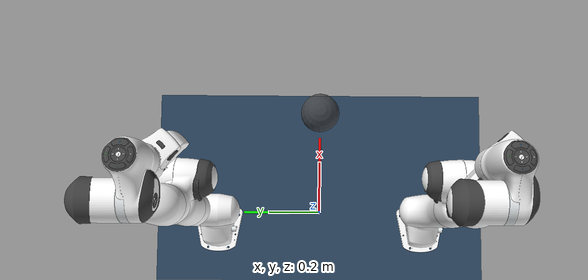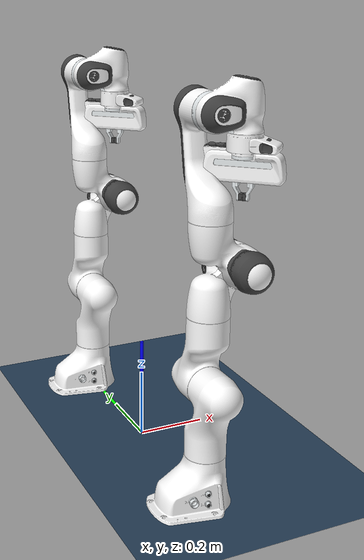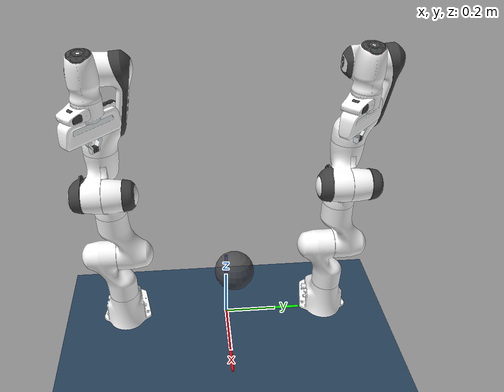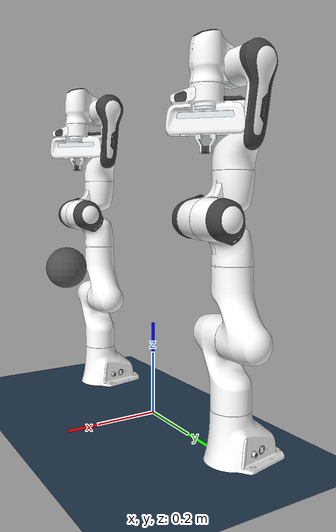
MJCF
<?xml version='1.0' encoding='utf-8'?>
<mujoco model="panda dual arm scene">
  <include file="panda_dual_arm_pos.xml" />

  <statistic center="0.3 0 0.4" extent="1.5" />

  <visual>
    <headlight diffuse="0.6 0.6 0.6" ambient="0.3 0.3 0.3" specular="0 0 0" />
    <rgba haze="0.15 0.25 0.35 1" />
    <global azimuth="120" elevation="-20" />
  </visual>

  <asset>
    <texture type="skybox" builtin="gradient" rgb1="0.3 0.5 0.7" rgb2="0 0 0" width="512" height="3072" />
    <texture type="2d" name="groundplane" builtin="checker" mark="edge" rgb1="0.2 0.3 0.4" rgb2="0.1 0.2 0.3" markrgb="0.8 0.8 0.8" width="300" height="300" />
    <material name="groundplane" texture="groundplane" texuniform="true" texrepeat="5 5" reflectance="0.2" />
  </asset>

  <worldbody>
    <light pos="0 0 1.5" dir="0 0 -1" directional="true" />
    <geom name="floor" size="0 0 0.05" type="plane" material="groundplane" />
    <body name="world_frame" pos="0 0 0">
      <geom name="X" type="cylinder" size="0.005" fromto="0 0 0 0.3 0 0" rgba="1 0 0 1" contype="0" conaffinity="0" />
      <geom name="Y" type="cylinder" size="0.005" fromto="0 0 0 0 0.3 0" rgba="0 1 0 1" contype="0" conaffinity="0" />
      <geom name="Z" type="cylinder" size="0.005" fromto="0 0 0 0 0 0.3" rgba="0 0 1 1" contype="0" conaffinity="0" />
    </body>

    <body name="obstacle_0">
      <geom name="obstacle_0"
        type="sphere"
        size="0.060"
        pos="0.300 0.000 0.500"
        contype="1"
        conaffinity="1"
        mass="0.2"
        rgba="0.300 0.300 0.300 0.800"
      />
    </body>
  </worldbody>
</mujoco>

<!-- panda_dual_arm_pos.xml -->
<mujoco model="panda dual arm">
  <compiler angle="radian" meshdir="assets" autolimits="true"/>

  <option integrator="implicitfast"/>

  <default>
    <default class="panda">
      <material specular="0.5" shininess="0.25"/>
      <joint armature="0.1" damping="1" axis="0 0 1" range="-2.8973 2.8973"/>
      <general dyntype="none" biastype="affine" ctrlrange="-2.8973 2.8973" forcerange="-87 87"/>
      <default class="finger">
        <joint axis="0 1 0" type="slide" range="0 0.04"/>
      </default>
      <default class="visual">
        <geom type="mesh" contype="0" conaffinity="0" group="2"/>
      </default>
      <default class="collision">
        <geom type="mesh" group="3"/>
        <default class="fingertip_pad_collision_1">
          <geom type="box" size="0.0085 0.004 0.0085" pos="0 0.0055 0.0445"/>
        </default>
        <default class="fingertip_pad_collision_2">
          <geom type="box" size="0.003 0.002 0.003" pos="0.0055 0.002 0.05"/>
        </default>
        <default class="fingertip_pad_collision_3">
          <geom type="box" size="0.003 0.002 0.003" pos="-0.0055 0.002 0.05"/>
        </default>
        <default class="fingertip_pad_collision_4">
          <geom type="box" size="0.003 0.002 0.0035" pos="0.0055 0.002 0.0395"/>
        </default>
        <default class="fingertip_pad_collision_5">
          <geom type="box" size="0.003 0.002 0.0035" pos="-0.0055 0.002 0.0395"/>
        </default>
      </default>
    </default>
  </default>

  <asset>
    <material class="panda" name="white" rgba="1 1 1 1"/>
    <material class="panda" name="off_white" rgba="0.901961 0.921569 0.929412 1"/>
    <material class="panda" name="black" rgba="0.25 0.25 0.25 1"/>
    <material class="panda" name="green" rgba="0 1 0 1"/>
    <material class="panda" name="light_blue" rgba="0.039216 0.541176 0.780392 1"/>

    <mesh name="link0_c" file="link0.stl"/>
    <mesh name="link1_c" file="link1.stl"/>
    <mesh name="link2_c" file="link2.stl"/>
    <mesh name="link3_c" file="link3.stl"/>
    <mesh name="link4_c" file="link4.stl"/>
    <mesh name="link5_c0" file="link5_collision_0.obj"/>
    <mesh name="link5_c1" file="link5_collision_1.obj"/>
    <mesh name="link5_c2" file="link5_collision_2.obj"/>
    <mesh name="link6_c" file="link6.stl"/>
    <mesh name="link7_c" file="link7.stl"/>
    <mesh name="hand_c" file="hand.stl"/>

    <mesh file="link0_0.obj"/>
    <mesh file="link0_1.obj"/>
    <mesh file="link0_2.obj"/>
    <mesh file="link0_3.obj"/>
    <mesh file="link0_4.obj"/>
    <mesh file="link0_5.obj"/>
    <mesh file="link0_7.obj"/>
    <mesh file="link0_8.obj"/>
    <mesh file="link0_9.obj"/>
    <mesh file="link0_10.obj"/>
    <mesh file="link0_11.obj"/>
    <mesh file="link1.obj"/>
    <mesh file="link2.obj"/>
    <mesh file="link3_0.obj"/>
    <mesh file="link3_1.obj"/>
    <mesh file="link3_2.obj"/>
    <mesh file="link3_3.obj"/>
    <mesh file="link4_0.obj"/>
    <mesh file="link4_1.obj"/>
    <mesh file="link4_2.obj"/>
    <mesh file="link4_3.obj"/>
    <mesh file="link5_0.obj"/>
    <mesh file="link5_1.obj"/>
    <mesh file="link5_2.obj"/>
    <mesh file="link6_0.obj"/>
    <mesh file="link6_1.obj"/>
    <mesh file="link6_2.obj"/>
    <mesh file="link6_3.obj"/>
    <mesh file="link6_4.obj"/>
    <mesh file="link6_5.obj"/>
    <mesh file="link6_6.obj"/>
    <mesh file="link6_7.obj"/>
    <mesh file="link6_8.obj"/>
    <mesh file="link6_9.obj"/>
    <mesh file="link6_10.obj"/>
    <mesh file="link6_11.obj"/>
    <mesh file="link6_12.obj"/>
    <mesh file="link6_13.obj"/>
    <mesh file="link6_14.obj"/>
    <mesh file="link6_15.obj"/>
    <mesh file="link6_16.obj"/>
    <mesh file="link7_0.obj"/>
    <mesh file="link7_1.obj"/>
    <mesh file="link7_2.obj"/>
    <mesh file="link7_3.obj"/>
    <mesh file="link7_4.obj"/>
    <mesh file="link7_5.obj"/>
    <mesh file="link7_6.obj"/>
    <mesh file="link7_7.obj"/>
    <mesh file="hand_0.obj"/>
    <mesh file="hand_1.obj"/>
    <mesh file="hand_2.obj"/>
    <mesh file="hand_3.obj"/>
    <mesh file="hand_4.obj"/>
    <mesh file="finger_0.obj"/>
    <mesh file="finger_1.obj"/>
  </asset>

  <worldbody>
    <light name="top" pos="0 0 2" mode="trackcom"/>

    <!-- ========== LEFT ARM ========== -->
    <body name="left_link0" pos="0 0.4 0" childclass="panda">
      <inertial mass="0.629769" pos="-0.041018 -0.00014 0.049974"
        fullinertia="0.00315 0.00388 0.004285 8.2904e-7 0.00015 8.2299e-6"/>
      <geom mesh="link0_0" material="off_white" class="visual"/>
      <geom mesh="link0_1" material="black" class="visual"/>
      <geom mesh="link0_2" material="off_white" class="visual"/>
      <geom mesh="link0_3" material="black" class="visual"/>
      <geom mesh="link0_4" material="off_white" class="visual"/>
      <geom mesh="link0_5" material="black" class="visual"/>
      <geom mesh="link0_7" material="white" class="visual"/>
      <geom mesh="link0_8" material="white" class="visual"/>
      <geom mesh="link0_9" material="black" class="visual"/>
      <geom mesh="link0_10" material="off_white" class="visual"/>
      <geom mesh="link0_11" material="white" class="visual"/>
      <geom mesh="link0_c" class="collision"/>
      <body name="left_link1" pos="0 0 0.333">
        <inertial mass="4.970684" pos="0.003875 0.002081 -0.04762"
          fullinertia="0.70337 0.70661 0.0091170 -0.00013900 0.0067720 0.019169"/>
        <joint name="left_joint1"/>
        <geom material="white" mesh="link1" class="visual"/>
        <geom mesh="link1_c" class="collision"/>
        <body name="left_link2" quat="1 -1 0 0">
          <inertial mass="0.646926" pos="-0.003141 -0.02872 0.003495"
            fullinertia="0.0079620 2.8110e-2 2.5995e-2 -3.925e-3 1.0254e-2 7.04e-4"/>
          <joint name="left_joint2" range="-1.7628 1.7628"/>
          <geom material="white" mesh="link2" class="visual"/>
          <geom mesh="link2_c" class="collision"/>
          <body name="left_link3" pos="0 -0.316 0" quat="1 1 0 0">
            <joint name="left_joint3"/>
            <inertial mass="3.228604" pos="2.7518e-2 3.9252e-2 -6.6502e-2"
              fullinertia="3.7242e-2 3.6155e-2 1.083e-2 -4.761e-3 -1.1396e-2 -1.2805e-2"/>
            <geom mesh="link3_0" material="white" class="visual"/>
            <geom mesh="link3_1" material="white" class="visual"/>
            <geom mesh="link3_2" material="white" class="visual"/>
            <geom mesh="link3_3" material="black" class="visual"/>
            <geom mesh="link3_c" class="collision"/>
            <body name="left_link4" pos="0.0825 0 0" quat="1 1 0 0">
              <inertial mass="3.587895" pos="-5.317e-2 1.04419e-1 2.7454e-2"
                fullinertia="2.5853e-2 1.9552e-2 2.8323e-2 7.796e-3 -1.332e-3 8.641e-3"/>
              <joint name="left_joint4" range="-3.0718 -0.0698"/>
              <geom mesh="link4_0" material="white" class="visual"/>
              <geom mesh="link4_1" material="white" class="visual"/>
              <geom mesh="link4_2" material="black" class="visual"/>
              <geom mesh="link4_3" material="white" class="visual"/>
              <geom mesh="link4_c" class="collision"/>
              <body name="left_link5" pos="-0.0825 0.384 0" quat="1 -1 0 0">
                <inertial mass="1.225946" pos="-1.1953e-2 4.1065e-2 -3.8437e-2"
                  fullinertia="3.5549e-2 2.9474e-2 8.627e-3 -2.117e-3 -4.037e-3 2.29e-4"/>
                <joint name="left_joint5"/>
                <geom mesh="link5_0" material="black" class="visual"/>
                <geom mesh="link5_1" material="white" class="visual"/>
                <geom mesh="link5_2" material="white" class="visual"/>
                <geom mesh="link5_c0" class="collision"/>
                <geom mesh="link5_c1" class="collision"/>
                <geom mesh="link5_c2" class="collision"/>
                <body name="left_link6" quat="1 1 0 0">
                  <inertial mass="1.666555" pos="6.0149e-2 -1.4117e-2 -1.0517e-2"
                    fullinertia="1.964e-3 4.354e-3 5.433e-3 1.09e-4 -1.158e-3 3.41e-4"/>
                  <joint name="left_joint6" range="-0.0175 3.7525"/>
                  <geom mesh="link6_0" material="off_white" class="visual"/>
                  <geom mesh="link6_1" material="white" class="visual"/>
                  <geom mesh="link6_2" material="black" class="visual"/>
                  <geom mesh="link6_3" material="white" class="visual"/>
                  <geom mesh="link6_4" material="white" class="visual"/>
                  <geom mesh="link6_5" material="white" class="visual"/>
                  <geom mesh="link6_6" material="white" class="visual"/>
                  <geom mesh="link6_7" material="light_blue" class="visual"/>
                  <geom mesh="link6_8" material="light_blue" class="visual"/>
                  <geom mesh="link6_9" material="black" class="visual"/>
                  <geom mesh="link6_10" material="black" class="visual"/>
                  <geom mesh="link6_11" material="white" class="visual"/>
                  <geom mesh="link6_12" material="green" class="visual"/>
                  <geom mesh="link6_13" material="white" class="visual"/>
                  <geom mesh="link6_14" material="black" class="visual"/>
                  <geom mesh="link6_15" material="black" class="visual"/>
                  <geom mesh="link6_16" material="white" class="visual"/>
                  <geom mesh="link6_c" class="collision"/>
                  <body name="left_link7" pos="0.088 0 0" quat="1 1 0 0">
                    <inertial mass="7.35522e-01" pos="1.0517e-2 -4.252e-3 6.1597e-2"
                      fullinertia="1.2516e-2 1.0027e-2 4.815e-3 -4.28e-4 -1.196e-3 -7.41e-4"/>
                    <joint name="left_joint7"/>
                    <geom mesh="link7_0" material="white" class="visual"/>
                    <geom mesh="link7_1" material="black" class="visual"/>
                    <geom mesh="link7_2" material="black" class="visual"/>
                    <geom mesh="link7_3" material="black" class="visual"/>
                    <geom mesh="link7_4" material="black" class="visual"/>
                    <geom mesh="link7_5" material="black" class="visual"/>
                    <geom mesh="link7_6" material="black" class="visual"/>
                    <geom mesh="link7_7" material="white" class="visual"/>
                    <geom mesh="link7_c" class="collision"/>
                    <body name="left_hand" pos="0 0 0.107" quat="0.9238795 0 0 -0.3826834">
                      <inertial mass="0.73" pos="-0.01 0 0.03" diaginertia="0.001 0.0025 0.0017"/>
                      <geom mesh="hand_0" material="off_white" class="visual"/>
                      <geom mesh="hand_1" material="black" class="visual"/>
                      <geom mesh="hand_2" material="black" class="visual"/>
                      <geom mesh="hand_3" material="white" class="visual"/>
                      <geom mesh="hand_4" material="off_white" class="visual"/>
                      <geom mesh="hand_c" class="collision"/>
                      <body name="left_ee_center_body" pos="0 0 0.105" quat="1 0 0 0">
                        <site name="left_ee_center_site" size="0.01" group="3"/>
                      </body>
                      <body name="left_left_finger" pos="0 0 0.0584">
                        <inertial mass="0.015" pos="0 0 0" diaginertia="2.375e-6 2.375e-6 7.5e-7"/>
                        <joint name="left_finger_joint1" class="finger"/>
                        <geom mesh="finger_0" material="off_white" class="visual"/>
                        <geom mesh="finger_1" material="black" class="visual"/>
                        <geom mesh="finger_0" class="collision"/>
                        <geom class="fingertip_pad_collision_1"/>
                        <geom class="fingertip_pad_collision_2"/>
                        <geom class="fingertip_pad_collision_3"/>
                        <geom class="fingertip_pad_collision_4"/>
                        <geom class="fingertip_pad_collision_5"/>
                      </body>
                      <body name="left_right_finger" pos="0 0 0.0584" quat="0 0 0 1">
                        <inertial mass="0.015" pos="0 0 0" diaginertia="2.375e-6 2.375e-6 7.5e-7"/>
                        <joint name="left_finger_joint2" class="finger"/>
                        <geom mesh="finger_0" material="off_white" class="visual"/>
                        <geom mesh="finger_1" material="black" class="visual"/>
                        <geom mesh="finger_0" class="collision"/>
                        <geom class="fingertip_pad_collision_1"/>
                        <geom class="fingertip_pad_collision_2"/>
                        <geom class="fingertip_pad_collision_3"/>
                        <geom class="fingertip_pad_collision_4"/>
                        <geom class="fingertip_pad_collision_5"/>
                      </body>
                    </body>
                  </body>
                </body>
              </body>
            </body>
          </body>
        </body>
      </body>
    </body>

    <!-- ========== RIGHT ARM ========== -->
    <body name="right_link0" pos="0 -0.4 0" childclass="panda">
      <inertial mass="0.629769" pos="-0.041018 -0.00014 0.049974"
        fullinertia="0.00315 0.00388 0.004285 8.2904e-7 0.00015 8.2299e-6"/>
      <geom mesh="link0_0" material="off_white" class="visual"/>
      <geom mesh="link0_1" material="black" class="visual"/>
      <geom mesh="link0_2" material="off_white" class="visual"/>
      <geom mesh="link0_3" material="black" class="visual"/>
      <geom mesh="link0_4" material="off_white" class="visual"/>
      <geom mesh="link0_5" material="black" class="visual"/>
      <geom mesh="link0_7" material="white" class="visual"/>
      <geom mesh="link0_8" material="white" class="visual"/>
      <geom mesh="link0_9" material="black" class="visual"/>
      <geom mesh="link0_10" material="off_white" class="visual"/>
      <geom mesh="link0_11" material="white" class="visual"/>
      <geom mesh="link0_c" class="collision"/>
      <body name="right_link1" pos="0 0 0.333">
        <inertial mass="4.970684" pos="0.003875 0.002081 -0.04762"
          fullinertia="0.70337 0.70661 0.0091170 -0.00013900 0.0067720 0.019169"/>
        <joint name="right_joint1"/>
        <geom material="white" mesh="link1" class="visual"/>
        <geom mesh="link1_c" class="collision"/>
        <body name="right_link2" quat="1 -1 0 0">
          <inertial mass="0.646926" pos="-0.003141 -0.02872 0.003495"
            fullinertia="0.0079620 2.8110e-2 2.5995e-2 -3.925e-3 1.0254e-2 7.04e-4"/>
          <joint name="right_joint2" range="-1.7628 1.7628"/>
          <geom material="white" mesh="link2" class="visual"/>
          <geom mesh="link2_c" class="collision"/>
          <body name="right_link3" pos="0 -0.316 0" quat="1 1 0 0">
            <joint name="right_joint3"/>
            <inertial mass="3.228604" pos="2.7518e-2 3.9252e-2 -6.6502e-2"
              fullinertia="3.7242e-2 3.6155e-2 1.083e-2 -4.761e-3 -1.1396e-2 -1.2805e-2"/>
            <geom mesh="link3_0" material="white" class="visual"/>
            <geom mesh="link3_1" material="white" class="visual"/>
            <geom mesh="link3_2" material="white" class="visual"/>
            <geom mesh="link3_3" material="black" class="visual"/>
            <geom mesh="link3_c" class="collision"/>
            <body name="right_link4" pos="0.0825 0 0" quat="1 1 0 0">
              <inertial mass="3.587895" pos="-5.317e-2 1.04419e-1 2.7454e-2"
                fullinertia="2.5853e-2 1.9552e-2 2.8323e-2 7.796e-3 -1.332e-3 8.641e-3"/>
              <joint name="right_joint4" range="-3.0718 -0.0698"/>
              <geom mesh="link4_0" material="white" class="visual"/>
              <geom mesh="link4_1" material="white" class="visual"/>
              <geom mesh="link4_2" material="black" class="visual"/>
              <geom mesh="link4_3" material="white" class="visual"/>
              <geom mesh="link4_c" class="collision"/>
              <body name="right_link5" pos="-0.0825 0.384 0" quat="1 -1 0 0">
                <inertial mass="1.225946" pos="-1.1953e-2 4.1065e-2 -3.8437e-2"
                  fullinertia="3.5549e-2 2.9474e-2 8.627e-3 -2.117e-3 -4.037e-3 2.29e-4"/>
                <joint name="right_joint5"/>
                <geom mesh="link5_0" material="black" class="visual"/>
                <geom mesh="link5_1" material="white" class="visual"/>
                <geom mesh="link5_2" material="white" class="visual"/>
                <geom mesh="link5_c0" class="collision"/>
                <geom mesh="link5_c1" class="collision"/>
                <geom mesh="link5_c2" class="collision"/>
                <body name="right_link6" quat="1 1 0 0">
                  <inertial mass="1.666555" pos="6.0149e-2 -1.4117e-2 -1.0517e-2"
                    fullinertia="1.964e-3 4.354e-3 5.433e-3 1.09e-4 -1.158e-3 3.41e-4"/>
                  <joint name="right_joint6" range="-0.0175 3.7525"/>
                  <geom mesh="link6_0" material="off_white" class="visual"/>
                  <geom mesh="link6_1" material="white" class="visual"/>
                  <geom mesh="link6_2" material="black" class="visual"/>
                  <geom mesh="link6_3" material="white" class="visual"/>
                  <geom mesh="link6_4" material="white" class="visual"/>
                  <geom mesh="link6_5" material="white" class="visual"/>
                  <geom mesh="link6_6" material="white" class="visual"/>
                  <geom mesh="link6_7" material="light_blue" class="visual"/>
                  <geom mesh="link6_8" material="light_blue" class="visual"/>
                  <geom mesh="link6_9" material="black" class="visual"/>
                  <geom mesh="link6_10" material="black" class="visual"/>
                  <geom mesh="link6_11" material="white" class="visual"/>
                  <geom mesh="link6_12" material="green" class="visual"/>
                  <geom mesh="link6_13" material="white" class="visual"/>
                  <geom mesh="link6_14" material="black" class="visual"/>
                  <geom mesh="link6_15" material="black" class="visual"/>
                  <geom mesh="link6_16" material="white" class="visual"/>
                  <geom mesh="link6_c" class="collision"/>
                  <body name="right_link7" pos="0.088 0 0" quat="1 1 0 0">
                    <inertial mass="7.35522e-01" pos="1.0517e-2 -4.252e-3 6.1597e-2"
                      fullinertia="1.2516e-2 1.0027e-2 4.815e-3 -4.28e-4 -1.196e-3 -7.41e-4"/>
                    <joint name="right_joint7"/>
                    <geom mesh="link7_0" material="white" class="visual"/>
                    <geom mesh="link7_1" material="black" class="visual"/>
                    <geom mesh="link7_2" material="black" class="visual"/>
                    <geom mesh="link7_3" material="black" class="visual"/>
                    <geom mesh="link7_4" material="black" class="visual"/>
                    <geom mesh="link7_5" material="black" class="visual"/>
                    <geom mesh="link7_6" material="black" class="visual"/>
                    <geom mesh="link7_7" material="white" class="visual"/>
                    <geom mesh="link7_c" class="collision"/>
                    <body name="right_hand" pos="0 0 0.107" quat="0.9238795 0 0 -0.3826834">
                      <inertial mass="0.73" pos="-0.01 0 0.03" diaginertia="0.001 0.0025 0.0017"/>
                      <geom mesh="hand_0" material="off_white" class="visual"/>
                      <geom mesh="hand_1" material="black" class="visual"/>
                      <geom mesh="hand_2" material="black" class="visual"/>
                      <geom mesh="hand_3" material="white" class="visual"/>
                      <geom mesh="hand_4" material="off_white" class="visual"/>
                      <geom mesh="hand_c" class="collision"/>
                      <body name="right_ee_center_body" pos="0 0 0.105" quat="1 0 0 0">
                        <site name="right_ee_center_site" size="0.01" group="3"/>
                      </body>
                      <body name="right_left_finger" pos="0 0 0.0584">
                        <inertial mass="0.015" pos="0 0 0" diaginertia="2.375e-6 2.375e-6 7.5e-7"/>
                        <joint name="right_finger_joint1" class="finger"/>
                        <geom mesh="finger_0" material="off_white" class="visual"/>
                        <geom mesh="finger_1" material="black" class="visual"/>
                        <geom mesh="finger_0" class="collision"/>
                        <geom class="fingertip_pad_collision_1"/>
                        <geom class="fingertip_pad_collision_2"/>
                        <geom class="fingertip_pad_collision_3"/>
                        <geom class="fingertip_pad_collision_4"/>
                        <geom class="fingertip_pad_collision_5"/>
                      </body>
                      <body name="right_right_finger" pos="0 0 0.0584" quat="0 0 0 1">
                        <inertial mass="0.015" pos="0 0 0" diaginertia="2.375e-6 2.375e-6 7.5e-7"/>
                        <joint name="right_finger_joint2" class="finger"/>
                        <geom mesh="finger_0" material="off_white" class="visual"/>
                        <geom mesh="finger_1" material="black" class="visual"/>
                        <geom mesh="finger_0" class="collision"/>
                        <geom class="fingertip_pad_collision_1"/>
                        <geom class="fingertip_pad_collision_2"/>
                        <geom class="fingertip_pad_collision_3"/>
                        <geom class="fingertip_pad_collision_4"/>
                        <geom class="fingertip_pad_collision_5"/>
                      </body>
                    </body>
                  </body>
                </body>
              </body>
            </body>
          </body>
        </body>
      </body>
    </body>
  </worldbody>

  <tendon>
    <fixed name="left_split">
      <joint joint="left_finger_joint1" coef="0.5"/>
      <joint joint="left_finger_joint2" coef="0.5"/>
    </fixed>
    <fixed name="right_split">
      <joint joint="right_finger_joint1" coef="0.5"/>
      <joint joint="right_finger_joint2" coef="0.5"/>
    </fixed>
  </tendon>

  <equality>
    <joint joint1="left_finger_joint1" joint2="left_finger_joint2" solimp="0.95 0.99 0.001" solref="0.005 1"/>
    <joint joint1="right_finger_joint1" joint2="right_finger_joint2" solimp="0.95 0.99 0.001" solref="0.005 1"/>
  </equality>

  <actuator>
    <position name="left_joint1_pos" joint="left_joint1" kp="800" kv="80" ctrlrange="-6.28 6.28" gear="1.0"/>
    <position name="left_joint2_pos" joint="left_joint2" kp="800" kv="80" ctrlrange="-6.28 6.28" gear="1.0"/>
    <position name="left_joint3_pos" joint="left_joint3" kp="800" kv="80" ctrlrange="-6.28 6.28" gear="1.0"/>
    <position name="left_joint4_pos" joint="left_joint4" kp="800" kv="80" ctrlrange="-6.28 6.28" gear="1.0"/>
    <position name="left_joint5_pos" joint="left_joint5" kp="800" kv="80" ctrlrange="-6.28 6.28" gear="1.0"/>
    <position name="left_joint6_pos" joint="left_joint6" kp="800" kv="80" ctrlrange="-6.28 6.28" gear="1.0"/>
    <position name="left_joint7_pos" joint="left_joint7" kp="800" kv="80" ctrlrange="-6.28 6.28" gear="1.0"/>
    <general class="panda" name="left_actuator8" tendon="left_split"
             forcerange="-100 100" ctrlrange="0 255"
             gainprm="0.01568627451 0" biasprm="0 -100 -10"/>

    <position name="right_joint1_pos" joint="right_joint1" kp="800" kv="80" ctrlrange="-6.28 6.28" gear="1.0"/>
    <position name="right_joint2_pos" joint="right_joint2" kp="800" kv="80" ctrlrange="-6.28 6.28" gear="1.0"/>
    <position name="right_joint3_pos" joint="right_joint3" kp="800" kv="80" ctrlrange="-6.28 6.28" gear="1.0"/>
    <position name="right_joint4_pos" joint="right_joint4" kp="800" kv="80" ctrlrange="-6.28 6.28" gear="1.0"/>
    <position name="right_joint5_pos" joint="right_joint5" kp="800" kv="80" ctrlrange="-6.28 6.28" gear="1.0"/>
    <position name="right_joint6_pos" joint="right_joint6" kp="800" kv="80" ctrlrange="-6.28 6.28" gear="1.0"/>
    <position name="right_joint7_pos" joint="right_joint7" kp="800" kv="80" ctrlrange="-6.28 6.28" gear="1.0"/>
    <general class="panda" name="right_actuator8" tendon="right_split"
             forcerange="-100 100" ctrlrange="0 255"
             gainprm="0.01568627451 0" biasprm="0 -100 -10"/>
  </actuator>

  <keyframe>
    <key name="home" qpos="0 0 0 -1.57079 0 3.0 -1.7853 0.04 0.04 0 0 0 -1.57079 0 3.0 -1.7853 0.04 0.04"
                   ctrl="0 0 0 -1.57079 0 1.57079 -0.7853 255 0 0 0 -1.57079 0 1.57079 -0.7853 255"/>
  </keyframe>

  <contact>
    <exclude body1="left_link0" body2="left_link1"/>
    <exclude body1="right_link0" body2="right_link1"/>
  </contact>
</mujoco>
